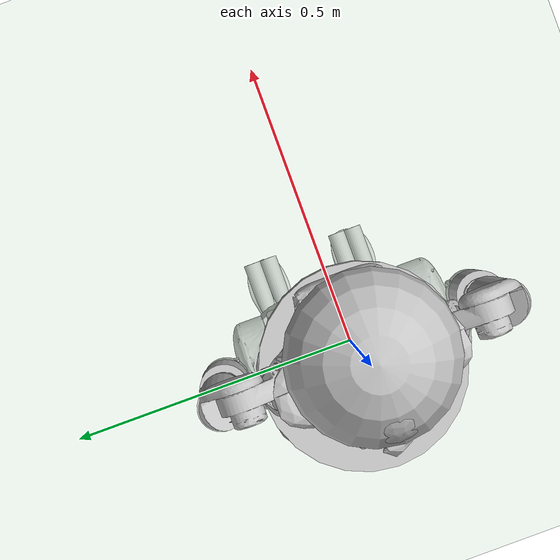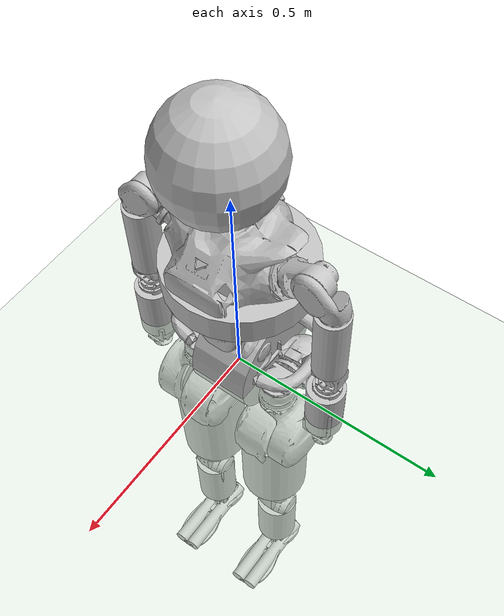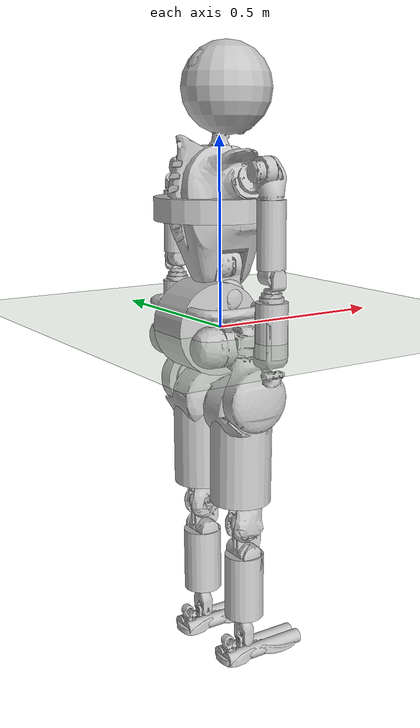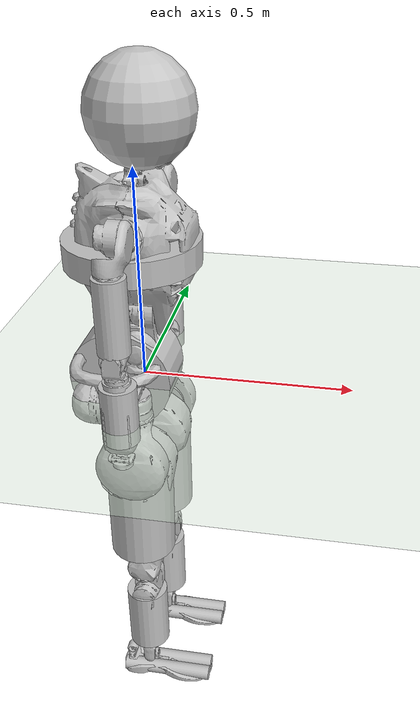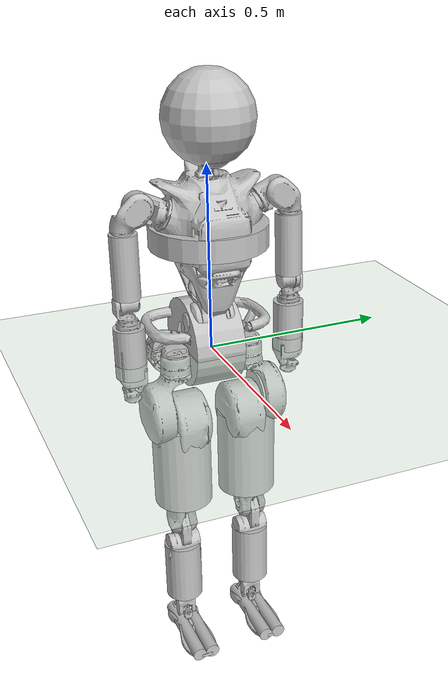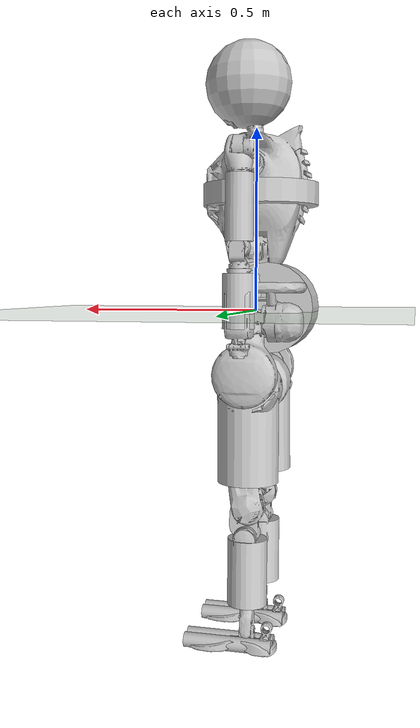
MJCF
<mujoco model="GR1T2_nohand">

  <compiler angle="radian" meshdir="meshes/"/>
  <default>
    <joint damping="0.2" armature="0.01" frictionloss="0.01" />
  </default>

  <asset>
    <mesh name="base_link" content_type="model/stl" file="base_link.STL"/>
    <mesh name="left_thigh_roll_link" content_type="model/stl" file="left_thigh_roll_link.STL"/>
    <mesh name="left_thigh_yaw_link" content_type="model/stl" file="left_thigh_yaw_link.STL"/>
    <mesh name="left_thigh_pitch_link" content_type="model/stl" file="left_thigh_pitch_link.STL"/>
    <mesh name="left_shank_pitch_link" content_type="model/stl" file="left_shank_pitch_link.STL"/>
    <mesh name="left_foot_pitch_link" content_type="model/stl" file="left_foot_pitch_link.STL"/>
    <mesh name="left_foot_roll_link" content_type="model/stl" file="left_foot_roll_link.STL"/>
    <mesh name="right_thigh_roll_link" content_type="model/stl" file="right_thigh_roll_link.STL"/>
    <mesh name="right_thigh_yaw_link" content_type="model/stl" file="right_thigh_yaw_link.STL"/>
    <mesh name="right_thigh_pitch_link" content_type="model/stl" file="right_thigh_pitch_link.STL"/>
    <mesh name="right_shank_pitch_link" content_type="model/stl" file="right_shank_pitch_link.STL"/>
    <mesh name="right_foot_pitch_link" content_type="model/stl" file="right_foot_pitch_link.STL"/>
    <mesh name="right_foot_roll_link" content_type="model/stl" file="right_foot_roll_link.STL"/>
    <mesh name="waist_yaw_link" content_type="model/stl" file="waist_yaw_link.STL"/>
    <mesh name="waist_pitch_link" content_type="model/stl" file="waist_pitch_link.STL"/>
    <mesh name="waist_roll_link" content_type="model/stl" file="waist_roll_link.STL"/>
    <mesh name="torso_link" content_type="model/stl" file="torso_link.STL"/>
    <mesh name="left_upper_arm_pitch_link" content_type="model/stl" file="left_upper_arm_pitch_link.STL"/>
    <mesh name="left_upper_arm_roll_link" content_type="model/stl" file="left_upper_arm_roll_link.STL"/>
    <mesh name="left_upper_arm_yaw_link" content_type="model/stl" file="left_upper_arm_yaw_link.STL"/>
    <mesh name="left_lower_arm_pitch_link" content_type="model/stl" file="left_lower_arm_pitch_link.STL"/>
    <mesh name="left_hand_yaw_link" content_type="model/stl" file="left_hand_yaw_link.STL"/>
    <mesh name="left_hand_roll_link" content_type="model/stl" file="left_hand_roll_link.STL"/>
    <mesh name="left_hand_pitch_link" content_type="model/stl" file="left_hand_pitch_link.STL"/>
    <mesh name="right_upper_arm_pitch_link" content_type="model/stl" file="right_upper_arm_pitch_link.STL"/>
    <mesh name="right_upper_arm_roll_link" content_type="model/stl" file="right_upper_arm_roll_link.STL"/>
    <mesh name="right_upper_arm_yaw_link" content_type="model/stl" file="right_upper_arm_yaw_link.STL"/>
    <mesh name="right_lower_arm_pitch_link" content_type="model/stl" file="right_lower_arm_pitch_link.STL"/>
    <mesh name="right_hand_yaw_link" content_type="model/stl" file="right_hand_yaw_link.STL"/>
    <mesh name="right_hand_roll_link" content_type="model/stl" file="right_hand_roll_link.STL"/>
    <mesh name="right_hand_pitch_link" content_type="model/stl" file="right_hand_pitch_link.STL"/>
    <mesh name="head_roll_link" content_type="model/stl" file="head_roll_link.STL"/>
    <mesh name="head_pitch_link" content_type="model/stl" file="head_pitch_link.STL"/>
    <mesh name="head_yaw_link" content_type="model/stl" file="head_yaw_link.STL"/>
    <mesh name="imu_link" content_type="model/stl" file="imu_link.STL"/>

    <texture builtin="gradient" height="100" rgb1=".4 .5 .6" rgb2="0 0 0" type="skybox" width="100"/>
    <texture name="texplane" type="2d" builtin="checker" rgb1=".2 .3 .4" rgb2=".1 0.15 0.2" width="100" height="100"/>
    <material name="MatPlane" reflectance="0.5" texture="texplane" texrepeat="1 1" texuniform="true"/>
  </asset>

  <worldbody>
    <geom name="floor" friction="1 .1 .1" pos="0 0 0" size="500 500 0.125" type="plane" material="MatPlane" condim="3" conaffinity="1" contype="1" group="2" rgba="0.8 0.9 0.8 1"></geom>
    <light cutoff="100" diffuse="1 1 1" dir="-0 0 -1.3" directional="true" exponent="1" pos="0 0 1.3" specular=".1 .1 .1" castshadow="false"/>

    <body name="base_link">
      <inertial pos="-0.0603426 -9.77845e-05 -0.00924921" quat="0.326809 0.326762 -0.627204 0.626928" mass="4.01" diaginertia="0.0441077 0.0398483 0.0135217"/>
      <joint name="floating_base_joint" type="free" limited="false" actuatorfrclimited="false"/>
      <geom type="mesh" contype="0" conaffinity="0" group="1" density="0" rgba="0.752941 0.752941 0.752941 1" mesh="base_link"/>
      <geom name="base_link.STL" size="0.122394 0.0685504" pos="-0.0425829 0.000370042 0.00921009" quat="0.706838 -0.707359 0.00477667 0" type="cylinder" rgba="0.752941 0.752941 0.752941 1"/>
      <geom pos="0 0 -0.0596" quat="1 0 0 0" type="mesh" contype="0" conaffinity="0" group="1" density="0" rgba="0.752941 0.752941 0.752941 1" mesh="imu_link"/>
      <body name="left_thigh_roll_link" pos="-0.031635 0.105 -0.0276">
        <inertial pos="0.001095 2.4e-05 0.001761" quat="-0.031059 0.704178 -0.033952 0.708531" mass="1.47" diaginertia="0.00257587 0.00247719 0.00157495"/>
        <joint name="left_hip_roll_joint" pos="0 0 0" axis="1 0 0" range="-0.09 0.79" actuatorfrcrange="-48 48"/>
        <geom type="mesh" contype="0" conaffinity="0" group="1" density="0" rgba="0.752941 0.752941 0.752941 1" mesh="left_thigh_roll_link"/>
        <body name="left_thigh_yaw_link" pos="0.033135 0 0.00075">
          <inertial pos="-0.000705 0.0384 -0.1103" quat="0.571434 0.0941154 -0.194765 0.791627" mass="3.47" diaginertia="0.024217 0.0195858 0.00891713"/>
          <joint name="left_hip_yaw_joint" pos="0 0 0" axis="0 0 1" range="-0.7 0.7" actuatorfrcrange="-66 66"/>
          <geom type="mesh" contype="0" conaffinity="0" group="1" density="0" rgba="0.752941 0.752941 0.752941 1" mesh="left_thigh_yaw_link"/>
          <body name="left_thigh_pitch_link" pos="0 0.0223 -0.14027">
            <inertial pos="0.001387 -0.02832 -0.064" quat="0.999809 -0.0150298 -0.00966469 0.00795179" mass="8.35" diaginertia="0.0928955 0.089614 0.0282705"/>
            <joint name="left_hip_pitch_joint" pos="0 0 0" axis="0 1 0" range="-1.75 0.7" actuatorfrcrange="-225 225"/>
            <geom type="mesh" contype="0" conaffinity="0" group="1" density="0" rgba="0.752941 0.752941 0.752941 1" mesh="left_thigh_pitch_link"/>
            <geom name="left_thigh_pitch_link.STL" size="0.082 0.124914" pos="0.000700051 -0.03 -0.167056" type="cylinder" rgba="0.752941 0.752941 0.752941 1"/>
            <body name="left_shank_pitch_link" pos="0 -0.019512 -0.36">
              <inertial pos="0.001482 -0.0008 -0.1154" quat="0.999712 -0.00791645 0.00765259 -0.0213093" mass="1.76" diaginertia="0.0107925 0.0106821 0.00125741"/>
              <joint name="left_knee_pitch_joint" pos="0 0 0" axis="0 1 0" range="-0.09 1.92" actuatorfrcrange="-225 225"/>
              <geom type="mesh" contype="0" conaffinity="0" group="1" density="0" rgba="0.752941 0.752941 0.752941 1" mesh="left_shank_pitch_link"/>
              <geom name="left_shank_pitch_link.STL" size="0.0533214 0.090385" pos="-1.65901e-05 -0.000842547 -0.174691" quat="0.00125538 -0.202712 0.979238 0" type="cylinder" rgba="0.752941 0.752941 0.752941 1"/>
              <body name="left_foot_pitch_link" pos="0 -0.00125 -0.34">
                <inertial pos="0.0367 0.00031 -0.03643" quat="-0.000674857 0.730398 -0.0008981 0.683021" mass="1.13" diaginertia="0.00566468 0.005248 0.000830322"/>
                <joint name="left_ankle_pitch_joint" pos="0 0 0" axis="0 1 0" range="-1.05 0.52" actuatorfrcrange="-15 15"/>
                <geom type="mesh" contype="0" conaffinity="0" group="1" density="0" rgba="0.752941 0.752941 0.752941 1" mesh="left_foot_pitch_link"/>
                <body name="left_foot_roll_link">
                  <inertial pos="0.0367 0.00031 -0.03643" quat="-0.000674857 0.730398 -0.0008981 0.683021" mass="1.13" diaginertia="0.00566468 0.005248 0.000830322"/>
                  <joint name="left_ankle_roll_joint" pos="0 0 0" axis="1 0 0" range="-0.44 0.44" actuatorfrcrange="-30 30"/>
                  <geom type="mesh" contype="0" conaffinity="0" group="1" density="0" rgba="0.752941 0.752941 0.752941 1" mesh="left_foot_roll_link"/>
                  <geom name="l_foot_1" size="0.02 0.12" pos="0.05 0.02 -0.035" quat="0.707105 0 0.707108 0" type="cylinder" rgba="0.752941 0.752941 0.752941 1"/>
                  <geom name="l_foot_2" size="0.02 0.12" pos="0.05 -0.02 -0.035" quat="0.707105 0 0.707108 0" type="cylinder" rgba="0.752941 0.752941 0.752941 1"/>
                </body>
              </body>
            </body>
          </body>
        </body>
      </body>
      <body name="right_thigh_roll_link" pos="-0.031635 -0.105 -0.0276">
        <inertial pos="0.001319 -9.8e-05 0.001752" quat="0.0273471 0.705116 0.0180948 0.708333" mass="1.47" diaginertia="0.00259441 0.00250177 0.00157182"/>
        <joint name="right_hip_roll_joint" pos="0 0 0" axis="1 0 0" range="-0.79 0.09" actuatorfrcrange="-48 48"/>
        <geom type="mesh" contype="0" conaffinity="0" group="1" density="0" rgba="0.752941 0.752941 0.752941 1" mesh="right_thigh_roll_link"/>
        <body name="right_thigh_yaw_link" pos="0.033135 0 0.00075">
          <inertial pos="-0.000705 -0.03841 -0.1104" quat="0.686827 -0.148106 0.150724 0.695424" mass="3.47" diaginertia="0.0237663 0.0191193 0.00896443"/>
          <joint name="right_hip_yaw_joint" pos="0 0 0" axis="0 0 1" range="-0.7 0.7" actuatorfrcrange="-66 66"/>
          <geom type="mesh" contype="0" conaffinity="0" group="1" density="0" rgba="0.752941 0.752941 0.752941 1" mesh="right_thigh_yaw_link"/>
          <body name="right_thigh_pitch_link" pos="0 -0.0223 -0.14027">
            <inertial pos="0.001386 0.02815 -0.06399" quat="0.9998 -0.0148855 -0.0117836 0.00634734" mass="8.35" diaginertia="0.0931874 0.0896135 0.0279091"/>
            <joint name="right_hip_pitch_joint" pos="0 0 0" axis="0 1 0" range="-1.75 0.7" actuatorfrcrange="-225 225"/>
            <geom type="mesh" contype="0" conaffinity="0" group="1" density="0" rgba="0.752941 0.752941 0.752941 1" mesh="right_thigh_pitch_link"/>
            <geom name="right_thigh_pitch_link.STL" size="0.082 0.124911" pos="-0.00212327 0.03 -0.167056" quat="0.999971 0.00269833 0.00706272 0" type="cylinder" rgba="0.752941 0.752941 0.752941 1"/>
            <body name="right_shank_pitch_link" pos="0 0.019762 -0.36">
              <inertial pos="0.001486 0.000785 -0.1152" quat="0.999674 0.00756422 0.00439871 0.023974" mass="1.76" diaginertia="0.0107511 0.0106318 0.00123912"/>
              <joint name="right_knee_pitch_joint" pos="0 0 0" axis="0 1 0" range="-0.09 1.92" actuatorfrcrange="-225 225"/>
              <geom type="mesh" contype="0" conaffinity="0" group="1" density="0" rgba="0.752941 0.752941 0.752941 1" mesh="right_shank_pitch_link"/>
              <geom name="right_shank_pitch_link.STL" size="0.0533211 0.0903841" pos="-1.65901e-05 -0.000842557 -0.174699" type="cylinder" rgba="0.752941 0.752941 0.752941 1"/>
              <body name="right_foot_pitch_link" pos="0 0.00125 -0.34">
                <inertial pos="0.037 -0.000306 -0.03642" quat="-0.000134373 0.730874 2.15086e-05 0.682512" mass="1.13" diaginertia="0.00569775 0.005248 0.000829253"/>
                <joint name="right_ankle_pitch_joint" pos="0 0 0" axis="0 1 0" range="-1.05 0.52" actuatorfrcrange="-15 15"/>
                <geom type="mesh" contype="0" conaffinity="0" group="1" density="0" rgba="0.752941 0.752941 0.752941 1" mesh="right_foot_pitch_link"/>
                <body name="right_foot_roll_link">
                  <inertial pos="0.037 -0.000306 -0.03642" quat="-0.000134373 0.730874 2.15086e-05 0.682512" mass="1.13" diaginertia="0.00569775 0.005248 0.000829253"/>
                  <joint name="right_ankle_roll_joint" pos="0 0 0" axis="1 0 0" range="-0.44 0.44" actuatorfrcrange="-30 30"/>
                  <geom type="mesh" contype="0" conaffinity="0" group="1" density="0" rgba="0.752941 0.752941 0.752941 1" mesh="right_foot_roll_link"/>
                  <geom name="r_foot_1" size="0.02 0.12" pos="0.05 0.02 -0.035" quat="0.707105 0 0.707108 0" type="cylinder" rgba="0.752941 0.752941 0.752941 1"/>
                  <geom name="r_foot_2" size="0.02 0.12" pos="0.05 -0.02 -0.035" quat="0.707105 0 0.707108 0" type="cylinder" rgba="0.752941 0.752941 0.752941 1"/>
                </body>
              </body>
            </body>
          </body>
        </body>
      </body>
      <body name="waist_yaw_link">
        <inertial pos="-0.00152 -0.00691 0.05223" quat="0.980015 0.187775 -0.0286699 0.0590703" mass="1.66" diaginertia="0.00357915 0.00329813 0.00215052"/>
        <joint name="waist_yaw_joint" pos="0 0 0" axis="0 0 1" range="-1.05 1.05" actuatorfrcrange="-66 66"/>
        <geom type="mesh" contype="0" conaffinity="0" group="1" density="0" rgba="0.752941 0.752941 0.752941 1" mesh="waist_yaw_link"/>
        <body name="waist_pitch_link" pos="0 0 0.0869">
          <inertial pos="0.004581 -0.004697 0.04034" quat="0.997865 -0.0446191 0.0472873 0.00617454" mass="1.54" diaginertia="0.00463109 0.00459442 0.00182779"/>
          <joint name="waist_pitch_joint" pos="0 0 0" axis="0 1 0" range="-0.52 1.22" actuatorfrcrange="-66 66"/>
          <geom type="mesh" contype="0" conaffinity="0" group="1" density="0" rgba="0.752941 0.752941 0.752941 1" mesh="waist_pitch_link"/>
          <body name="waist_roll_link" pos="0.00525 -0.0005 0.081">
            <inertial pos="-0.012064 0.000746766 0.147048" quat="0.998745 -0.00255155 -0.0500191 0.000264677" mass="6.63" diaginertia="0.0624922 0.0594537 0.0353303"/>
            <joint name="waist_roll_joint" pos="0 0 0" axis="1 0 0" range="-0.7 0.7" actuatorfrcrange="-66 66"/>
            <geom type="mesh" contype="0" conaffinity="0" group="1" density="0" rgba="0.752941 0.752941 0.752941 1" mesh="waist_roll_link"/>
            <geom pos="-0.00225 0.00057443 0.16035" quat="1 0 0 0" type="mesh" contype="0" conaffinity="0" group="1" density="0" rgba="0.752941 0.752941 0.752941 1" mesh="torso_link"/>
            <geom name="torso_link.STL" size="0.157427 0.030193" pos="-0.0180659 0.0057698 0.147829" type="cylinder" rgba="0.752941 0.752941 0.752941 1"/>
            <body name="left_upper_arm_pitch_link" pos="-0.00225 0.101854 0.207001" quat="0.976682 0.214691 0 0">
              <inertial pos="0.0033 0.05361 -0.00011" quat="0.704342 0.707875 0.00357246 -0.0529337" mass="0.82" diaginertia="0.00205013 0.00198133 0.000494393"/>
              <joint name="left_shoulder_pitch_joint" pos="0 0 0" axis="0 1 0" range="-2.79 1.92" actuatorfrcrange="-38 38"/>
              <geom type="mesh" contype="0" conaffinity="0" group="1" density="0" rgba="0.752941 0.752941 0.752941 1" mesh="left_upper_arm_pitch_link"/>
              <body name="left_upper_arm_roll_link" pos="0 0.09515 0" quat="0.976682 -0.214691 0 0">
                <inertial pos="0.005026 0.0174 -0.02398" quat="0.889427 0.26921 0.124364 -0.34782" mass="0.61" diaginertia="0.00103195 0.00100289 0.000351365"/>
                <joint name="left_shoulder_roll_joint" pos="0 0 0" axis="1 0 0" range="-0.57 2.53" actuatorfrcrange="-38 38"/>
                <geom type="mesh" contype="0" conaffinity="0" group="1" density="0" rgba="0.752941 0.752941 0.752941 1" mesh="left_upper_arm_roll_link"/>
                <body name="left_upper_arm_yaw_link" pos="0 0.04 -0.0709">
                  <inertial pos="-1.7e-05 -0.0002 -0.08761" quat="0.999953 0.00694074 0.00015458 -0.00680898" mass="0.54" diaginertia="0.0035571 0.00354463 0.000259707"/>
                  <joint name="left_shoulder_yaw_joint" pos="0 0 0" axis="0 0 1" range="-2.97 2.97" actuatorfrcrange="-30 30"/>
                  <geom type="mesh" contype="0" conaffinity="0" group="1" density="0" rgba="0.752941 0.752941 0.752941 1" mesh="left_upper_arm_yaw_link"/>
                  <geom name="left_upper_arm_yaw_link.STL" size="0.0362332 0.084942" pos="3.94854e-05 -0.00089429 -0.07934" quat="0.00803418 -0.995528 0.0941277 0" type="cylinder" rgba="0.752941 0.752941 0.752941 1"/>
                  <body name="left_lower_arm_pitch_link" pos="0 0.0010503 -0.1786">
                    <inertial pos="0 0.008102 -0.02528" quat="0.701231 -0.091744 0.0914592 0.701066" mass="0.33" diaginertia="0.000300329 0.00029558 9.83814e-05"/>
                    <joint name="left_elbow_pitch_joint" pos="0 0 0" axis="0 1 0" range="-2.27 2.27" actuatorfrcrange="-30 30"/>
                    <geom type="mesh" contype="0" conaffinity="0" group="1" density="0" rgba="0.752941 0.752941 0.752941 1" mesh="left_lower_arm_pitch_link"/>
                    <body name="left_hand_yaw_link" pos="0 0 -0.05945">
                      <inertial pos="0.00044 0.00196 -0.07313" quat="0.999955 -0.00387629 -0.00140987 0.00859643" mass="0.99" diaginertia="0.00262154 0.0025492 0.0004977"/>
                      <joint name="left_wrist_yaw_joint" pos="0 0 0" axis="0 0 1" range="-2.97 2.97" actuatorfrcrange="-10.2 10.2"/>
                      <geom type="mesh" contype="0" conaffinity="0" group="1" density="0" rgba="0.752941 0.752941 0.752941 1" mesh="left_hand_yaw_link"/>
                      <geom name="left_hand_yaw_link.STL" size="0.0415719 0.0695937" pos="0.00108925 -0.00154111 -0.0760429" type="cylinder" rgba="0.752941 0.752941 0.752941 1"/>
                      <body name="left_hand_roll_link" pos="0 0 -0.19115">
                        <inertial pos="0 0.005104 -0.008485" quat="-0.193229 0.680193 -0.193229 0.680193" mass="0.055" diaginertia="2.1618e-05 1.9382e-05 1.1e-05"/>
                        <joint name="left_wrist_roll_joint" pos="0 0 0" axis="1 0 0" range="-0.87 0.96" actuatorfrcrange="-3.95 3.95"/>
                        <geom type="mesh" contype="0" conaffinity="0" group="1" density="0" rgba="0.752941 0.752941 0.752941 1" mesh="left_hand_roll_link"/>
                        <body name="left_hand_pitch_link">
                          <inertial pos="0 0.005104 -0.008485" quat="-0.193229 0.680193 -0.193229 0.680193" mass="0.055" diaginertia="2.1618e-05 1.9382e-05 1.1e-05"/>
                          <joint name="left_wrist_pitch_joint" pos="0 0 0" axis="0 1 0" range="-0.61 0.61" actuatorfrcrange="-3.95 3.95"/>
                          <geom type="mesh" contype="0" conaffinity="0" group="1" density="0" rgba="0.752941 0.752941 0.752941 1" mesh="left_hand_pitch_link"/>
                        </body>
                      </body>
                    </body>
                  </body>
                </body>
              </body>
            </body>
            <body name="right_upper_arm_pitch_link" pos="-0.00225 -0.100706 0.207001" quat="0.976682 -0.214691 0 0">
              <inertial pos="0.00338 -0.05364 0.00021" quat="0.705975 0.707326 0.0279931 0.022495" mass="0.82" diaginertia="0.00205312 0.0019775 0.000498147"/>
              <joint name="right_shoulder_pitch_joint" pos="0 0 0" axis="0 1 0" range="-2.79 1.92" actuatorfrcrange="-38 38"/>
              <geom type="mesh" contype="0" conaffinity="0" group="1" density="0" rgba="0.752941 0.752941 0.752941 1" mesh="right_upper_arm_pitch_link"/>
              <body name="right_upper_arm_roll_link" pos="0 -0.09515 0" quat="0.976682 0.214691 0 0">
                <inertial pos="0.004503 -0.0174 -0.02398" quat="0.888378 -0.269034 0.125196 0.350331" mass="0.61" diaginertia="0.00103202 0.00100294 0.000351156"/>
                <joint name="right_shoulder_roll_joint" pos="0 0 0" axis="1 0 0" range="-2.53 0.57" actuatorfrcrange="-38 38"/>
                <geom type="mesh" contype="0" conaffinity="0" group="1" density="0" rgba="0.752941 0.752941 0.752941 1" mesh="right_upper_arm_roll_link"/>
                <body name="right_upper_arm_yaw_link" pos="0 -0.04 -0.0709">
                  <inertial pos="-1e-05 0.0002 -0.08761" quat="0.999976 -0.00693371 -6.74246e-06 0.000561102" mass="0.54" diaginertia="0.0035706 0.00354473 0.000259658"/>
                  <joint name="right_shoulder_yaw_joint" pos="0 0 0" axis="0 0 1" range="-2.97 2.97" actuatorfrcrange="-30 30"/>
                  <geom type="mesh" contype="0" conaffinity="0" group="1" density="0" rgba="0.752941 0.752941 0.752941 1" mesh="right_upper_arm_yaw_link"/>
                  <geom name="right_upper_arm_yaw_link.STL" size="0.0362332 0.084942" pos="3.94854e-05 0.00089429 -0.07934" type="cylinder" rgba="0.752941 0.752941 0.752941 1"/>
                  <body name="right_lower_arm_pitch_link" pos="0 -0.0010503 -0.1786">
                    <inertial pos="0 -0.008102 -0.02528" quat="0.701212 0.091869 -0.0915845 0.701052" mass="0.33" diaginertia="0.000300348 0.00029558 9.86522e-05"/>
                    <joint name="right_elbow_pitch_joint" pos="0 0 0" axis="0 1 0" range="-2.27 2.27" actuatorfrcrange="-30 30"/>
                    <geom type="mesh" contype="0" conaffinity="0" group="1" density="0" rgba="0.752941 0.752941 0.752941 1" mesh="right_lower_arm_pitch_link"/>
                    <body name="right_hand_yaw_link" pos="0 0 -0.05945">
                      <inertial pos="0.00047 -0.00196 -0.07239" quat="0.999702 0.00397568 -0.00077022 0.024083" mass="0.99" diaginertia="0.00259807 0.00252546 0.000497627"/>
                      <joint name="right_wrist_yaw_joint" pos="0 0 0" axis="0 0 1" range="-2.97 2.97" actuatorfrcrange="-10.2 10.2"/>
                      <geom type="mesh" contype="0" conaffinity="0" group="1" density="0" rgba="0.752941 0.752941 0.752941 1" mesh="right_hand_yaw_link"/>
                      <geom name="right_hand_yaw_link.STL" size="0.0415719 0.0695937" pos="0.00108925 0.000641114 -0.0760429" type="cylinder" rgba="0.752941 0.752941 0.752941 1"/>
                      <body name="right_hand_roll_link" pos="0 0 -0.19115">
                        <inertial pos="0 0.005104 -0.008485" quat="-0.193229 0.680193 -0.193229 0.680193" mass="0.055" diaginertia="2.1618e-05 1.9382e-05 1.1e-05"/>
                        <joint name="right_wrist_roll_joint" pos="0 0 0" axis="1 0 0" range="-0.96 0.87" actuatorfrcrange="-3.95 3.95"/>
                        <geom type="mesh" contype="0" conaffinity="0" group="1" density="0" rgba="0.752941 0.752941 0.752941 1" mesh="right_hand_roll_link"/>
                        <body name="right_hand_pitch_link">
                          <inertial pos="0 0.005104 -0.008485" quat="-0.193229 0.680193 -0.193229 0.680193" mass="0.055" diaginertia="2.1618e-05 1.9382e-05 1.1e-05"/>
                          <joint name="right_wrist_pitch_joint" pos="0 0 0" axis="0 1 0" range="-0.61 0.61" actuatorfrcrange="-3.95 3.95"/>
                          <geom type="mesh" contype="0" conaffinity="0" group="1" density="0" rgba="0.752941 0.752941 0.752941 1" mesh="right_hand_pitch_link"/>
                        </body>
                      </body>
                    </body>
                  </body>
                </body>
              </body>
            </body>
            <body name="head_roll_link" pos="-0.00025 0.00109283 0.305">
              <inertial pos="0.00425 0 0" quat="0 0.707107 0 0.707107" mass="0.01" diaginertia="7.2e-07 4.4e-07 4.3e-07"/>
              <joint name="head_roll_joint" pos="0 0 0" axis="1 0 0" range="-0.35 0.35" actuatorfrcrange="-3.95 3.95"/>
              <geom type="mesh" contype="0" conaffinity="0" group="1" density="0" rgba="0.752941 0.752941 0.752941 1" mesh="head_roll_link"/>
              <body name="head_pitch_link">
                <inertial pos="-0.0021765 -4.1784e-07 0.017509" quat="0.664723 0.664723 0.241129 -0.241129" mass="0.06" diaginertia="2.61761e-05 2.35339e-05 1.707e-05"/>
                <joint name="head_pitch_joint" pos="0 0 0" axis="0 1 0" range="-0.87 0.87" actuatorfrcrange="-3.95 3.95"/>
                <geom type="mesh" contype="0" conaffinity="0" group="1" density="0" rgba="0.752941 0.752941 0.752941 1" mesh="head_pitch_link"/>
                <body name="head_yaw_link" pos="0 0 0.0513">
                  <inertial pos="0.0271 -0.00206 0.09577" quat="0.706523 -0.134666 -0.142781 0.67993" mass="1.58" diaginertia="0.0101378 0.00793809 0.00526261"/>
                  <joint name="head_yaw_joint" pos="0 0 0" axis="0 0 1" range="-2.71 2.71" actuatorfrcrange="-3.95 3.95"/>
                  <geom type="mesh" contype="0" conaffinity="0" group="1" density="0" rgba="0.752941 0.752941 0.752941 1" mesh="head_yaw_link"/>
                  <geom name="head_yaw_link.STL" size="0.118687" pos="0.0182811 -0.000880024 0.0936202" rgba="0.752941 0.752941 0.752941 1"/>
                </body>
              </body>
            </body>
          </body>
        </body>
      </body>
    </body>
  </worldbody>

  <actuator>
    <motor name="left_hip_roll_joint" joint="left_hip_roll_joint"/>
    <motor name="left_hip_yaw_joint" joint="left_hip_yaw_joint"/>
    <motor name="left_hip_pitch_joint" joint="left_hip_pitch_joint"/>
    <motor name="left_knee_pitch_joint" joint="left_knee_pitch_joint"/>
    <motor name="left_ankle_pitch_joint" joint="left_ankle_pitch_joint"/>
    <motor name="left_ankle_roll_joint" joint="left_ankle_roll_joint"/>
    <motor name="right_hip_roll_joint" joint="right_hip_roll_joint"/>
    <motor name="right_hip_yaw_joint" joint="right_hip_yaw_joint"/>
    <motor name="right_hip_pitch_joint" joint="right_hip_pitch_joint"/>
    <motor name="right_knee_pitch_joint" joint="right_knee_pitch_joint"/>
    <motor name="right_ankle_pitch_joint" joint="right_ankle_pitch_joint"/>
    <motor name="right_ankle_roll_joint" joint="right_ankle_roll_joint"/>
    <motor name="waist_yaw_joint" joint="waist_yaw_joint"/>
    <motor name="waist_pitch_joint" joint="waist_pitch_joint"/>
    <motor name="waist_roll_joint" joint="waist_roll_joint"/>
    <motor name="left_shoulder_pitch_joint" joint="left_shoulder_pitch_joint"/>
    <motor name="left_shoulder_roll_joint" joint="left_shoulder_roll_joint"/>
    <motor name="left_shoulder_yaw_joint" joint="left_shoulder_yaw_joint"/>
    <motor name="left_elbow_pitch_joint" joint="left_elbow_pitch_joint"/>
    <motor name="right_shoulder_pitch_joint" joint="right_shoulder_pitch_joint"/>
    <motor name="right_shoulder_roll_joint" joint="right_shoulder_roll_joint"/>
    <motor name="right_shoulder_yaw_joint" joint="right_shoulder_yaw_joint"/>
    <motor name="right_elbow_pitch_joint" joint="right_elbow_pitch_joint"/>
    <motor name="left_wrist_yaw_joint" joint="left_wrist_yaw_joint"/>
    <motor name="left_wrist_roll_joint" joint="left_wrist_roll_joint"/>
    <motor name="left_wrist_pitch_joint" joint="left_wrist_pitch_joint"/>
    <motor name="right_wrist_yaw_joint" joint="right_wrist_yaw_joint"/>
    <motor name="right_wrist_roll_joint" joint="right_wrist_roll_joint"/>
    <motor name="right_wrist_pitch_joint" joint="right_wrist_pitch_joint"/>
    <motor name="head_roll_joint" joint="head_roll_joint"/>
    <motor name="head_pitch_joint" joint="head_pitch_joint"/>
    <motor name="head_yaw_joint" joint="head_yaw_joint"/>
  </actuator>
</mujoco>
